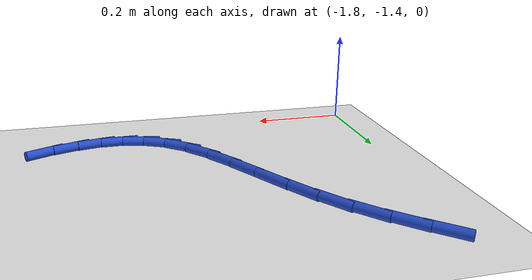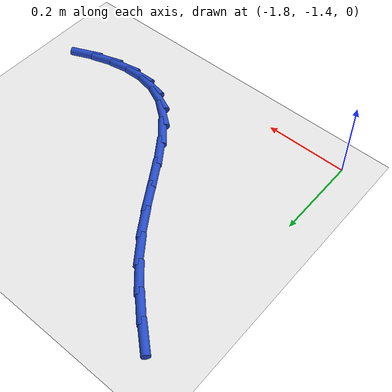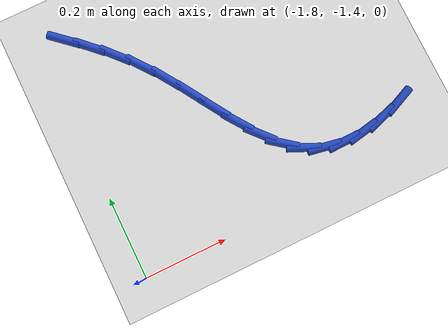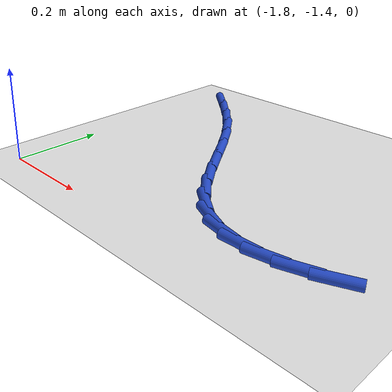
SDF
<sdf version="1.6">
 <world name="default">
  <model name="ground_plane">
   <static>1</static>
   <link name="link">
    <collision name="collision">
     <geometry><plane><normal>0 0 1</normal><size>100 100</size></plane></geometry>
     <surface><friction><ode><mu>100</mu><mu2>50</mu2></ode></friction></surface>
    </collision>
    <visual name="visual">
     <cast_shadows>0</cast_shadows>
     <geometry><plane><normal>0 0 1</normal><size>100 100</size></plane></geometry>
     <material>
      <script><uri>file://media/materials/scripts/gazebo.material</uri><name>Gazebo/WhiteGlow</name></script>
     </material>
    </visual>
   </link>
  </model>
  <model name="line">
   <link name="link_78">
    <pose>-1.7395002962385713 -0.8118017732576177 0.01 0 1.57 -0.7282296072655972</pose>
    <collision name="collision">
     <geometry><cylinder><radius>0.01</radius><length>0.08</length></cylinder></geometry>
    </collision>
    <visual name="visual">
     <material>
      <script><name>Gazebo/Blue</name><uri>file://media/materials/scripts/gazebo.material</uri></script>
     </material>
     <geometry><cylinder><radius>0.01</radius><length>0.08</length></cylinder></geometry>
    </visual>
   </link>
   <link name="link_79">
    <pose>-1.6918669172616694 -0.8542780915466386 0.01 0 1.57 -0.7713809804597309</pose>
    <collision name="collision">
     <geometry><cylinder><radius>0.01</radius><length>0.08</length></cylinder></geometry>
    </collision>
    <visual name="visual">
     <material>
      <script><name>Gazebo/Blue</name><uri>file://media/materials/scripts/gazebo.material</uri></script>
     </material>
     <geometry><cylinder><radius>0.01</radius><length>0.08</length></cylinder></geometry>
    </visual>
   </link>
   <link name="link_80">
    <pose>-1.645462665541923 -0.8993993297008158 0.01 0 1.57 -0.8418486152089381</pose>
    <collision name="collision">
     <geometry><cylinder><radius>0.01</radius><length>0.08</length></cylinder></geometry>
    </collision>
    <visual name="visual">
     <material>
      <script><name>Gazebo/Blue</name><uri>file://media/materials/scripts/gazebo.material</uri></script>
     </material>
     <geometry><cylinder><radius>0.01</radius><length>0.08</length></cylinder></geometry>
    </visual>
   </link>
   <link name="link_81">
    <pose>-1.601768618126143 -0.9483275043656525 0.01 0 1.57 -0.9303007489441536</pose>
    <collision name="collision">
     <geometry><cylinder><radius>0.01</radius><length>0.08</length></cylinder></geometry>
    </collision>
    <visual name="visual">
     <material>
      <script><name>Gazebo/Blue</name><uri>file://media/materials/scripts/gazebo.material</uri></script>
     </material>
     <geometry><cylinder><radius>0.01</radius><length>0.08</length></cylinder></geometry>
    </visual>
   </link>
   <link name="link_82">
    <pose>-1.561935082686853 -1.001772782128139 0.01 0 1.57 -0.9932083931386415</pose>
    <collision name="collision">
     <geometry><cylinder><radius>0.01</radius><length>0.08</length></cylinder></geometry>
    </collision>
    <visual name="visual">
     <material>
      <script><name>Gazebo/Blue</name><uri>file://media/materials/scripts/gazebo.material</uri></script>
     </material>
     <geometry><cylinder><radius>0.01</radius><length>0.08</length></cylinder></geometry>
    </visual>
   </link>
   <link name="link_83">
    <pose>-1.525305382626222 -1.0579768847561448 0.01 0 1.57 -1.0190154958108897</pose>
    <collision name="collision">
     <geometry><cylinder><radius>0.01</radius><length>0.08</length></cylinder></geometry>
    </collision>
    <visual name="visual">
     <material>
      <script><name>Gazebo/Blue</name><uri>file://media/materials/scripts/gazebo.material</uri></script>
     </material>
     <geometry><cylinder><radius>0.01</radius><length>0.08</length></cylinder></geometry>
    </visual>
   </link>
   <link name="link_84">
    <pose>-1.4906088735137033 -1.1143428185175523 0.01 0 1.57 -1.0078332105125856</pose>
    <collision name="collision">
     <geometry><cylinder><radius>0.01</radius><length>0.08</length></cylinder></geometry>
    </collision>
    <visual name="visual">
     <material>
      <script><name>Gazebo/Blue</name><uri>file://media/materials/scripts/gazebo.material</uri></script>
     </material>
     <geometry><cylinder><radius>0.01</radius><length>0.08</length></cylinder></geometry>
    </visual>
   </link>
   <link name="link_85">
    <pose>-1.4565744058012084 -1.1682728996605274 0.01 0 1.57 -0.9543833244871129</pose>
    <collision name="collision">
     <geometry><cylinder><radius>0.01</radius><length>0.08</length></cylinder></geometry>
    </collision>
    <visual name="visual">
     <material>
      <script><name>Gazebo/Blue</name><uri>file://media/materials/scripts/gazebo.material</uri></script>
     </material>
     <geometry><cylinder><radius>0.01</radius><length>0.08</length></cylinder></geometry>
    </visual>
   </link>
   <link name="link_86">
    <pose>-1.4219308299406528 -1.2171694444332342 0.01 0 1.57 -0.8462759549373735</pose>
    <collision name="collision">
     <geometry><cylinder><radius>0.01</radius><length>0.08</length></cylinder></geometry>
    </collision>
    <visual name="visual">
     <material>
      <script><name>Gazebo/Blue</name><uri>file://media/materials/scripts/gazebo.material</uri></script>
     </material>
     <geometry><cylinder><radius>0.01</radius><length>0.08</length></cylinder></geometry>
    </visual>
   </link>
   <link name="link_87">
    <pose>-1.385406996383947 -1.258434769083838 0.01 0 1.57 -0.6642107450490845</pose>
    <collision name="collision">
     <geometry><cylinder><radius>0.01</radius><length>0.08</length></cylinder></geometry>
    </collision>
    <visual name="visual">
     <material>
      <script><name>Gazebo/Blue</name><uri>file://media/materials/scripts/gazebo.material</uri></script>
     </material>
     <geometry><cylinder><radius>0.01</radius><length>0.08</length></cylinder></geometry>
    </visual>
   </link>
   <link name="link_88">
    <pose>-1.3457401569589318 -1.2894889108850593 0.01 0 1.57 -0.4219755605808114</pose>
    <collision name="collision">
     <geometry><cylinder><radius>0.01</radius><length>0.08</length></cylinder></geometry>
    </collision>
    <visual name="visual">
     <material>
      <script><name>Gazebo/Blue</name><uri>file://media/materials/scripts/gazebo.material</uri></script>
     </material>
     <geometry><cylinder><radius>0.01</radius><length>0.08</length></cylinder></geometry>
    </visual>
   </link>
   <link name="link_89">
    <pose>-1.3022629476499312 -1.3090077510747664 0.01 0 1.57 -0.18365562550597733</pose>
    <collision name="collision">
     <geometry><cylinder><radius>0.01</radius><length>0.08</length></cylinder></geometry>
    </collision>
    <visual name="visual">
     <material>
      <script><name>Gazebo/Blue</name><uri>file://media/materials/scripts/gazebo.material</uri></script>
     </material>
     <geometry><cylinder><radius>0.01</radius><length>0.08</length></cylinder></geometry>
    </visual>
   </link>
   <link name="link_90">
    <pose>-1.25528756965023 -1.3177333680557022 0.01 0 1.57 0.022625067834830318</pose>
    <collision name="collision">
     <geometry><cylinder><radius>0.01</radius><length>0.08</length></cylinder></geometry>
    </collision>
    <visual name="visual">
     <material>
      <script><name>Gazebo/Blue</name><uri>file://media/materials/scripts/gazebo.material</uri></script>
     </material>
     <geometry><cylinder><radius>0.01</radius><length>0.08</length></cylinder></geometry>
    </visual>
   </link>
   <link name="link_91">
    <pose>-1.2052174844712218 -1.3166003356447178 0.01 0 1.57 0.18835557787267307</pose>
    <collision name="collision">
     <geometry><cylinder><radius>0.01</radius><length>0.08</length></cylinder></geometry>
    </collision>
    <visual name="visual">
     <material>
      <script><name>Gazebo/Blue</name><uri>file://media/materials/scripts/gazebo.material</uri></script>
     </material>
     <geometry><cylinder><radius>0.01</radius><length>0.08</length></cylinder></geometry>
    </visual>
   </link>
   <link name="link_92">
    <pose>-1.1524561536242994 -1.306543227658663 0.01 0 1.57 0.31678708109454273</pose>
    <collision name="collision">
     <geometry><cylinder><radius>0.01</radius><length>0.08</length></cylinder></geometry>
    </collision>
    <visual name="visual">
     <material>
      <script><name>Gazebo/Blue</name><uri>file://media/materials/scripts/gazebo.material</uri></script>
     </material>
     <geometry><cylinder><radius>0.01</radius><length>0.08</length></cylinder></geometry>
    </visual>
   </link>
   <link name="link_93">
    <pose>-1.0974070386208563 -1.288496617914388 0.01 0 1.57 0.41525454332168554</pose>
    <collision name="collision">
     <geometry><cylinder><radius>0.01</radius><length>0.08</length></cylinder></geometry>
    </collision>
    <visual name="visual">
     <material>
      <script><name>Gazebo/Blue</name><uri>file://media/materials/scripts/gazebo.material</uri></script>
     </material>
     <geometry><cylinder><radius>0.01</radius><length>0.08</length></cylinder></geometry>
    </visual>
   </link>
  </model>
 </world>
</sdf>
